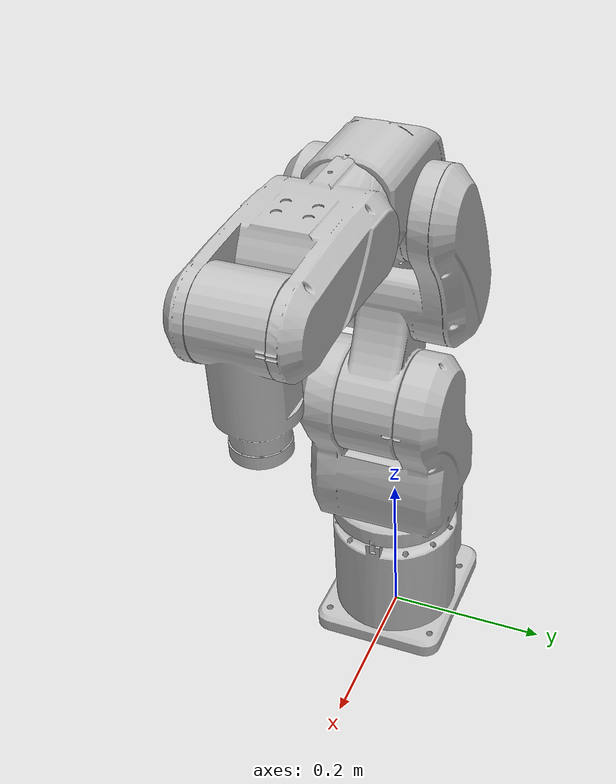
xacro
<?xml version="1.0" encoding="utf-8"?>
<robot name="probot_g602" xmlns:xacro="http://ros.org/wiki/xacro">
  <xacro:property name="M_PI" value="3.1415926536"/>

  <link
    name="base_link">
    <inertial>
      <origin
        xyz="-0.015641 -0.00015049 0.079593"
        rpy="0 0 0" />
      <mass
        value="4.1703" />
      <inertia
        ixx="0.016529"
        ixy="-4.5001E-05"
        ixz="-0.0002579"
        iyy="0.020275"
        iyz="5.9903E-06"
        izz="0.017611" />
    </inertial>
    <visual>
      <origin
        xyz="0 0 0"
        rpy="0 0 0" />
      <geometry>
        <mesh
          filename="package://probot_description/meshes/PROBOT_G602/base_link.STL" />
      </geometry>
      <material
        name="">
        <color
          rgba="0.75294 0.75294 0.75294 1" />
      </material>
    </visual>
    <collision>
      <origin
        xyz="0 0 0"
        rpy="0 0 0" />
      <geometry>
        <mesh
          filename="package://probot_description/meshes/PROBOT_G602/base_link.STL" />
      </geometry>
    </collision>
  </link>
  <link
    name="link_1">
    <inertial>
      <origin
        xyz="0.020099 0.00016921 0.11023"
        rpy="0 0 0" />
      <mass
        value="2.9125" />
      <inertia
        ixx="0.023168"
        ixy="4.3362E-06"
        ixz="-0.0024524"
        iyy="0.019701"
        iyz="0.0014154"
        izz="0.011512" />
    </inertial>
    <visual>
      <origin
        xyz="0 0 0"
        rpy="0 0 0" />
      <geometry>
        <mesh
          filename="package://probot_description/meshes/PROBOT_G602/link_1.STL" />
      </geometry>
      <material
        name="">
        <color
          rgba="0.75294 0.75294 0.75294 1" />
      </material>
    </visual>
    <collision>
      <origin
        xyz="0 0 0"
        rpy="0 0 0" />
      <geometry>
        <mesh
          filename="package://probot_description/meshes/PROBOT_G602/link_1.STL" />
      </geometry>
    </collision>
  </link>
  <joint
    name="joint_1"
    type="revolute">
    <origin
      xyz="0 0 0.17"
      rpy="0 0 0" />
    <parent
      link="base_link" />
    <child
      link="link_1" />
    <axis
      xyz="0 0 1" />
    <limit
      lower="-2.79"
      upper="2.79"
      effort="100"
      velocity="3" />
  </joint>
  <link
    name="link_2">
    <inertial>
      <origin
        xyz="-0.0304834981504815 -0.00585112195418841 0.11148992665908"
        rpy="0 0 0" />
      <mass
        value="1.37743931802127" />
      <inertia
        ixx="0.00566217630571542"
        ixy="1.4685183791796E-05"
        ixz="6.77916838191874E-05"
        iyy="0.00818921736230165"
        iyz="1.64643168230211E-05"
        izz="0.00301091109458356" />
    </inertial>
    <visual>
      <origin
        xyz="0 0 0"
        rpy="0 0 0" />
      <geometry>
        <mesh
          filename="package://probot_description/meshes/PROBOT_G602/link_2.STL" />
      </geometry>
      <material
        name="">
        <color
          rgba="0.752941176470588 0.752941176470588 0.752941176470588 1" />
      </material>
    </visual>
    <collision>
      <origin
        xyz="0 0 0"
        rpy="0 0 0" />
      <geometry>
        <mesh
          filename="package://probot_description/meshes/PROBOT_G602/link_2.STL" />
      </geometry>
    </collision>
  </link>
  <joint
    name="joint_2"
    type="revolute">
    <origin
      xyz="0.037625 0 0.199"
      rpy="0 0 0" />
    <parent
      link="link_1" />
    <child
      link="link_2" />
    <axis
      xyz="0 -1 0" />
    <limit
      lower="-2.37"
      upper="0.79"
      effort="100"
      velocity="3" />
  </joint>
  <link
    name="link_3">
    <inertial>
      <origin
        xyz="0.00572622422184665 0.002896321154644 0.0184702519886124"
        rpy="0 0 0" />
      <mass
        value="1.16157933753674" />
      <inertia
        ixx="0.00245611264935126"
        ixy="2.58312448293691E-05"
        ixz="-0.000408318776033645"
        iyy="0.0032528543291385"
        iyz="3.04209964925426E-05"
        izz="0.00228719723655595" />
    </inertial>
    <visual>
      <origin
        xyz="0 0 0"
        rpy="0 0 0" />
      <geometry>
        <mesh
          filename="package://probot_description/meshes/PROBOT_G602/link_3.STL" />
      </geometry>
      <material
        name="">
        <color
          rgba="0.752941176470588 0.752941176470588 0.752941176470588 1" />
      </material>
    </visual>
    <collision>
      <origin
        xyz="0 0 0"
        rpy="0 0 0" />
      <geometry>
        <mesh
          filename="package://probot_description/meshes/PROBOT_G602/link_3.STL" />
      </geometry>
    </collision>
  </link>
  <joint
    name="joint_3"
    type="revolute">
    <origin
      xyz="0 0 0.24137"
      rpy="0 0 0" />
    <parent
      link="link_2" />
    <child
      link="link_3" />
    <axis
      xyz="0 -1 0" />
    <limit
      lower="-1.27"
      upper="2.09"
      effort="100"
      velocity="3" />
  </joint>
  <link
    name="link_4">
    <inertial>
      <origin
        xyz="0.0030368 0.001559 0.094503"
        rpy="0 0 0" />
      <mass
        value="1.2291" />
      <inertia
        ixx="0.0038692"
        ixy="1.6447E-06"
        ixz="-0.00018849"
        iyy="0.0036865"
        iyz="-2.2864E-05"
        izz="0.0013715" />
    </inertial>
    <visual>
      <origin
        xyz="0 0 0"
        rpy="0 0 0" />
      <geometry>
        <mesh
          filename="package://probot_description/meshes/PROBOT_G602/link_4.STL" />
      </geometry>
      <material
        name="">
        <color
          rgba="0.75294 0.75294 0.75294 1" />
      </material>
    </visual>
    <collision>
      <origin
        xyz="0 0 0"
        rpy="0 0 0" />
      <geometry>
        <mesh
          filename="package://probot_description/meshes/PROBOT_G602/link_4.STL" />
      </geometry>
    </collision>
  </link>
  <joint
    name="joint_4"
    type="revolute">
    <origin
      xyz="0.079913 0 0.041977"
      rpy="${M_PI/2} 0 ${M_PI/2}" />
    <parent
      link="link_3" />
    <child
      link="link_4" />
    <axis
      xyz="0 0 1" />
    <limit
      lower="-2.72"
      upper="2.72"
      effort="100"
      velocity="3" />
  </joint>
  <link
    name="link_5">
    <inertial>
      <origin
        xyz="4.1513E-06 -0.0013796 0.031727"
        rpy="0 0 0" />
      <mass
        value="0.66118" />
      <inertia
        ixx="0.0011184"
        ixy="8.7984E-08"
        ixz="1.0245E-07"
        iyy="0.001172"
        iyz="-1.8355E-05"
        izz="0.00050623" />
    </inertial>
    <visual>
      <origin
        xyz="0 0 0"
        rpy="0 0 0" />
      <geometry>
        <mesh
          filename="package://probot_description/meshes/PROBOT_G602/link_5.STL" />
      </geometry>
      <material
        name="">
        <color
          rgba="0.75294 0.75294 0.75294 1" />
      </material>
    </visual>
    <collision>
      <origin
        xyz="0 0 0"
        rpy="0 0 0" />
      <geometry>
        <mesh
          filename="package://probot_description/meshes/PROBOT_G602/link_5.STL" />
      </geometry>
    </collision>
  </link>
  <joint
    name="joint_5"
    type="revolute">
    <origin
      xyz="0 0 0.20705"
      rpy="${-M_PI/2} ${-M_PI/2} ${-M_PI}" />
    <parent
      link="link_4" />
    <child
      link="link_5" />
    <axis
      xyz="0 1 0" />
    <limit
      lower="-0.44"
      upper="3.6"
      effort="100"
      velocity="3" />
  </joint>
  <link
    name="link_6">
    <inertial>
      <origin
        xyz="1.4378E-06 -1.5239E-07 -0.0084989"
        rpy="0 0 0" />
      <mass
        value="0.030336" />
      <inertia
        ixx="6.4282E-06"
        ixy="7.2637E-11"
        ixz="-7.2762E-10"
        iyy="6.4284E-06"
        iyz="2.9487E-11"
        izz="1.1897E-05" />
    </inertial>
    <visual>
      <origin
        xyz="0 0 0"
        rpy="0 0 0" />
      <geometry>
        <mesh
          filename="package://probot_description/meshes/PROBOT_G602/link_6.STL" />
      </geometry>
      <material
        name="">
        <color
          rgba="0.75294 0.75294 0.75294 1" />
      </material>
    </visual>
    <collision>
      <origin
        xyz="0 0 0"
        rpy="0 0 0" />
      <geometry>
        <mesh
          filename="package://probot_description/meshes/PROBOT_G602/link_6.STL" />
      </geometry>
    </collision>
  </link>
  <joint
    name="joint_6"
    type="revolute">
    <origin
      xyz="0 0 0.1205"
      rpy="${-M_PI} 0 0" />
    <parent
      link="link_5" />
    <child
      link="link_6" />
    <axis
      xyz="0 0 -1" />
    <limit
      lower="-6.26"
      upper="6.26"
      effort="100"
      velocity="3" />
  </joint>

  <link name="tool0"/>
  <joint name="joint_tool0" type="fixed">
    <origin xyz="0 0 -0.01513" rpy="0 0 0" />
    <parent link="link_6" />
    <child link="tool0" />
  </joint>

  <!-- Transmissions for ROS Control -->
  <xacro:macro name="transmission_block" params="joint_name">
    <transmission name="tran1">
      <type>transmission_interface/SimpleTransmission</type>
      <joint name="${joint_name}">
        <hardwareInterface>hardware_interface/PositionJointInterface</hardwareInterface>
      </joint>
      <actuator name="motor1">
        <hardwareInterface>hardware_interface/PositionJointInterface</hardwareInterface>
        <mechanicalReduction>1</mechanicalReduction>
      </actuator>
    </transmission>
  </xacro:macro>

  <xacro:transmission_block joint_name="joint_1"/>
  <xacro:transmission_block joint_name="joint_2"/>
  <xacro:transmission_block joint_name="joint_3"/>
  <xacro:transmission_block joint_name="joint_4"/>
  <xacro:transmission_block joint_name="joint_5"/>
  <xacro:transmission_block joint_name="joint_6"/>

  <!-- ros_control plugin -->
  <gazebo>
    <plugin name="gazebo_ros_control" filename="libgazebo_ros_control.so">
      <robotNamespace>/</robotNamespace>
      <robotSimType>gazebo_ros_control/DefaultRobotHWSim</robotSimType>
      <legacyModeNS>true</legacyModeNS>
    </plugin>
  </gazebo>
</robot>
